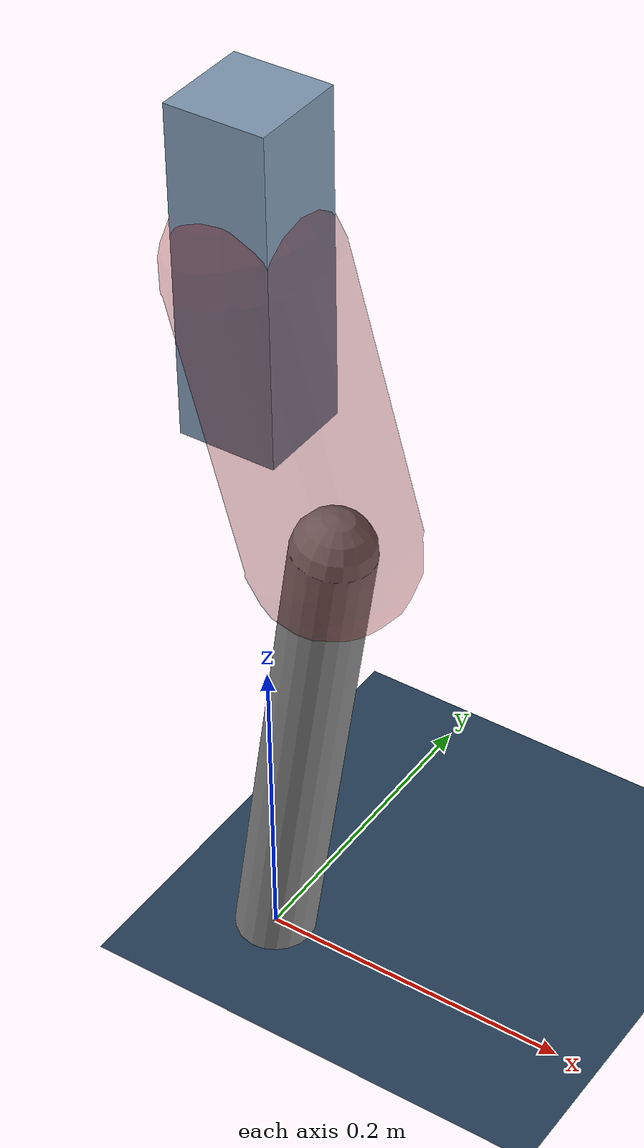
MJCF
<mujoco model="Hopper2D">
	<compiler inertiafromgeom="true" angle="radian" />
	<option timestep="0.001" integrator="implicit" cone="elliptic" solver="Newton" tolerance="1e-10" />

	<default>
		<geom contype="1" conaffinity="1" condim="3" friction="2 0.005 0.0001" solref="0.005 1" />
		<joint limited="true" damping="0.1" />
	</default>

	<asset>
		<texture name="skybox" type="skybox" builtin="gradient" rgb1=".4 .6 .8" rgb2="0 0 0" width="800" height="800" />
		<texture name="grid" type="2d" builtin="checker" rgb1=".1 .2 .3" rgb2=".2 .3 .4" width="300" height="300" mark="edge" markrgb=".2 .3 .4" />
		<material name="ground" texture="grid" texrepeat="1 1" texuniform="true" reflectance="0.1" />
		<material name="leg" rgba="0.5 0.6 0.7 1" />
	</asset>

	<worldbody>

		<geom name="floor" type="plane" size="5 5 0.25" material="ground" />

		<light directional="false" diffuse="0.8 0.8 0.8" specular="0.3 0.3 0.3" pos="0 0 2" dir="0 0 -1" />
		<light mode="targetbodycom" target="base" directional="false" diffuse="0.8 0.8 0.8" specular="0.3 0.3 0.3" pos="0 0 2" dir="0 0 -1" />

		<camera name="fixed" pos="0 -2 1" xyaxes="1 0 0 0 0 1" />
		<camera name="tracking" mode="trackcom" pos="0 -3 1" />

		<body name="root" pos="0 0 0.47884370598022363">
			<joint name="slide_x" type="slide" axis="1 0 0" range="-100 100" />
			<joint name="slide_z" type="slide" axis="0 0 1" range="0 10" />

			<body name="base" pos="0 0 0">
				<geom name="torso" type="box" size="0.03 0.03 0.1" mass="1.867" material="leg" />

				<body name="link1" pos="0 0 0" euler="0 1.2965202064204373 0">
					<joint type="hinge" axis="0 -1 0" pos="0 0 0" name="hinge1" limited="true" range="-3.14 3.14" stiffness="0" damping="0.1" />
					<geom name="thigh" type="capsule" fromto="0 0 0 0.17343029728494105 0 0" size="0.05" rgba="0.5 0 0 0.3" mass="0.6645757432123527" />

					<body name="link2" pos="0.17343029728494105 0 0" euler="0 0.4237593814954456 0">
						<joint type="hinge" axis="0 -1 0" pos="0 0 0" name="hinge2" limited="true" range="-3.14 3.14" stiffness="0" damping="0.1" />
						<geom name="shank" type="capsule" fromto="0 0 0 0.31541340869528256 0 0" size="0.025" mass="0.49593072695622603" />

					</body>
				</body>
			</body>
		</body>
	</worldbody>

	<actuator>
		<motor name="torque1" joint="hinge1" ctrlrange="-44.77785024744454 44.77785024744454" ctrllimited="true" gear="1" />
		<motor name="torque2" joint="hinge2" ctrlrange="-49.34119513964905 49.34119513964905" ctrllimited="true" gear="1" />
	</actuator>
</mujoco>
